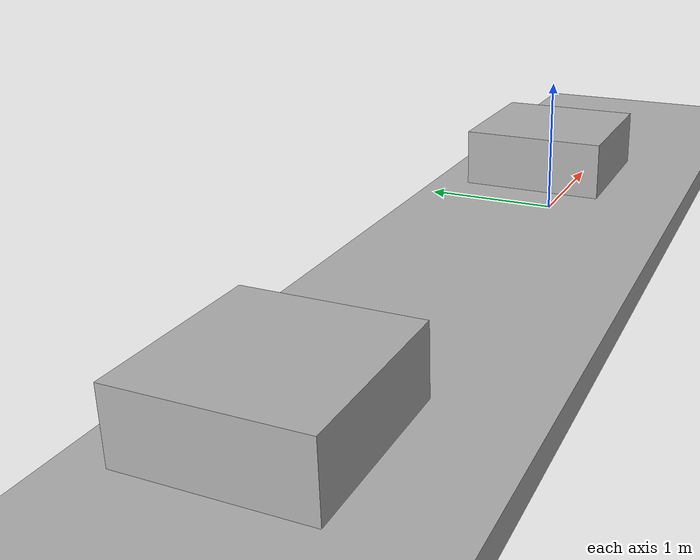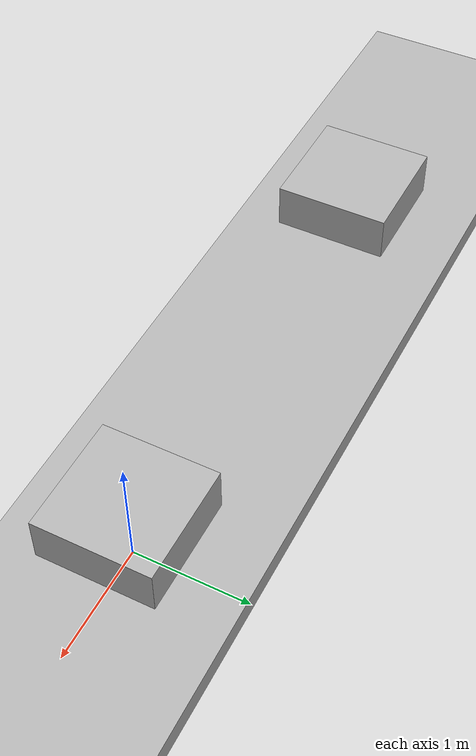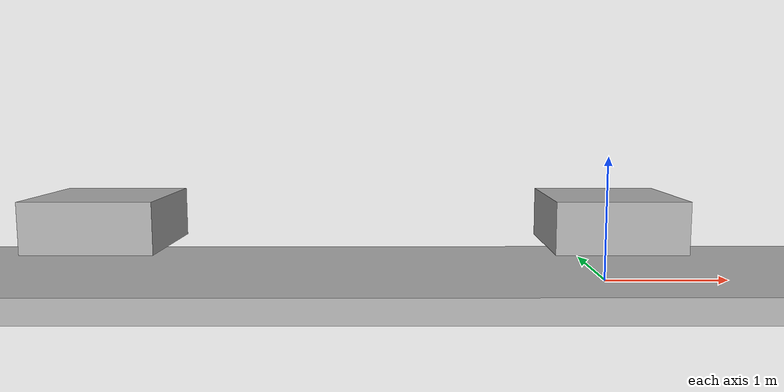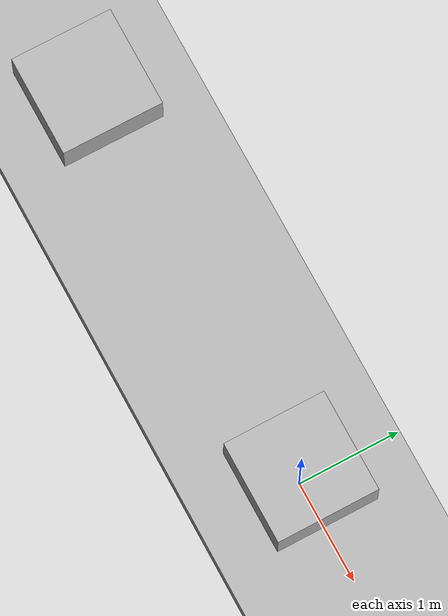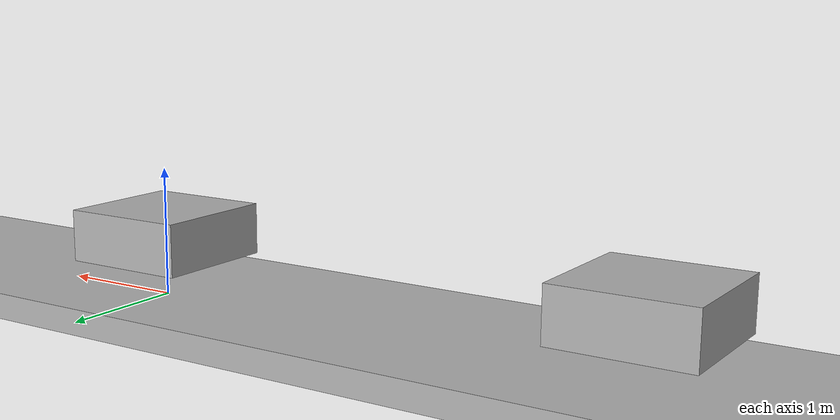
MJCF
<mujoco>
  <option gravity="0 0 -9.81" />
  <worldbody>
    <light diffuse="0.6 0.6 0.6" pos="0 0 5" dir="0 0 -1" />
    <body name="ground" pos="0 0 -10">
      <geom type="plane" size="50 50 0.1" rgba="0.7 0.7 0.7 1" />
    </body>
    <body name="track" pos="0 0 0">
      <geom type="box" size="10 1 0.1" rgba="0.7 0.7 0.7 1" friction="0.001 0.001 0.001" />
    </body>
    <body name="glider_1" pos="-4 0 0.5">
      <geom type="box" size="0.5 0.5 0.2" mass="1" rgba="0.7 0.7 0.7 1" />
      <joint type="free" />
    </body>
    <body name="glider_2" pos="0 0 0.5">
      <geom type="box" size="0.5 0.5 0.2" mass="1" rgba="0.7 0.7 0.7 1" />
      <joint type="free" />
    </body>
  </worldbody>
</mujoco>
